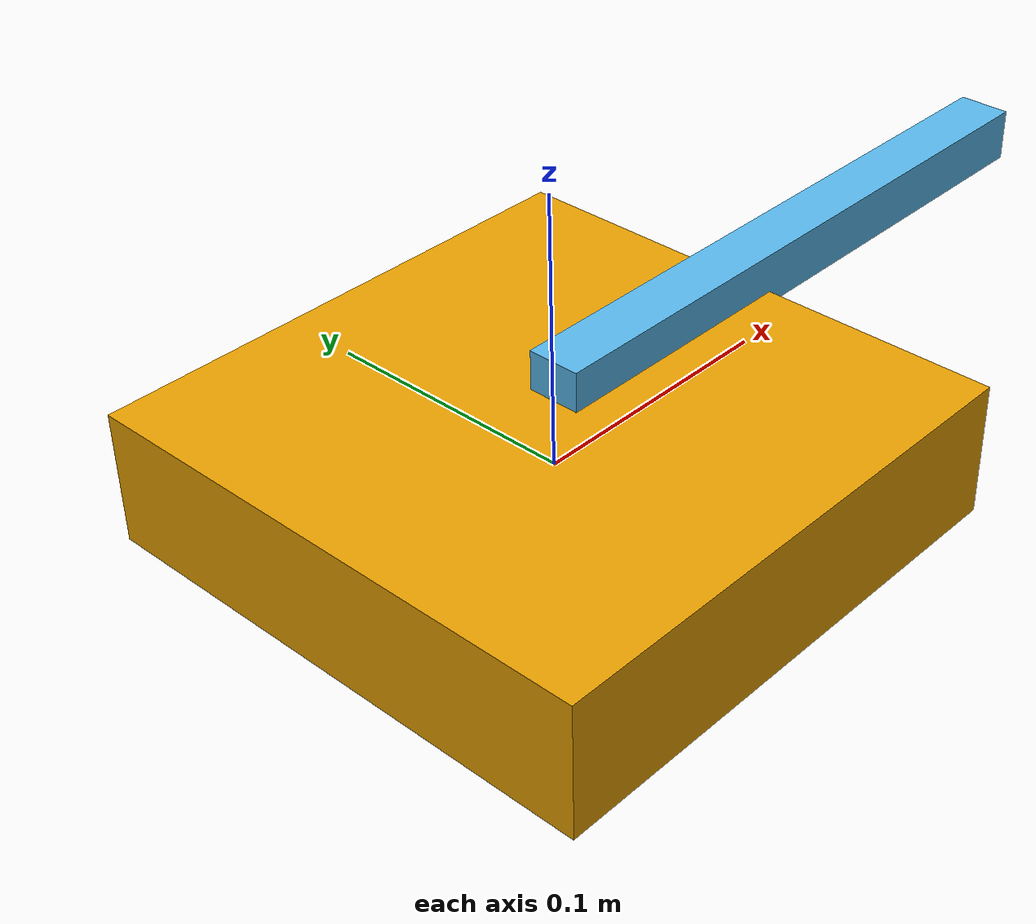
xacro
<?xml version="1.0"?>
<robot name="robotio" xmlns:xacro="http://www.ros.org/wiki/xacro">
  <!-- Base inerte -->
  <link name="base_link">
    <inertial><mass value="1"/><inertia ixx="1e-3" iyy="1e-3" izz="1e-3" ixy="0" ixz="0" iyz="0"/></inertial>
    <visual><geometry><box size="0.2 0.2 0.05"/></geometry></visual>
    <collision><geometry><box size="0.2 0.2 0.05"/></geometry></collision>
  </link>

  <!-- Eslabón giratorio -->
  <link name="arm_link">
    <inertial><mass value="0.5"/><inertia ixx="5e-4" iyy="5e-4" izz="5e-4" ixy="0" ixz="0" iyz="0"/></inertial>
    <visual><geometry><box size="0.25 0.02 0.02"/></geometry><origin xyz="0.125 0 0"/></visual>
    <collision><geometry><box size="0.25 0.02 0.02"/></geometry><origin xyz="0.125 0 0"/></collision>
  </link>

<xacro:arg name="use_ros2_control" default="false"/>

<xacro:if value="$(arg use_ros2_control)">
  <gazebo>
    <plugin name="gazebo_ros2_control" filename="libgazebo_ros2_control.so">
      <parameters>/tmp/robotio_rw/config/controllers.yaml</parameters>
    </plugin>
  </gazebo>
</xacro:if>

  <!-- Joint de rotación en Z (grados de libertad del servo) -->
  <joint name="arm_joint" type="revolute">
    <parent link="base_link"/>
    <child link="arm_link"/>
    <origin xyz="0 0 0.03" rpy="0 0 0"/>
    <axis xyz="0 0 1"/>
    <limit lower="-3.1416" upper="3.1416" effort="1.0" velocity="2.0"/>
    <dynamics damping="0.1"/>
  </joint>

<xacro:arg name="mesh_root" default="/sim/models/robotio"/>

  <!-- Transmisión del joint (obligatoria para ros2_control) -->
  <transmission name="arm_transmission">
    <type>transmission_interface/SimpleTransmission</type>
    <actuator name="arm_motor"><mechanicalReduction>1</mechanicalReduction></actuator>
    <joint name="arm_joint">
      <hardwareInterface>hardware_interface/PositionJointInterface</hardwareInterface>
    </joint>
  </transmission>
</robot>
